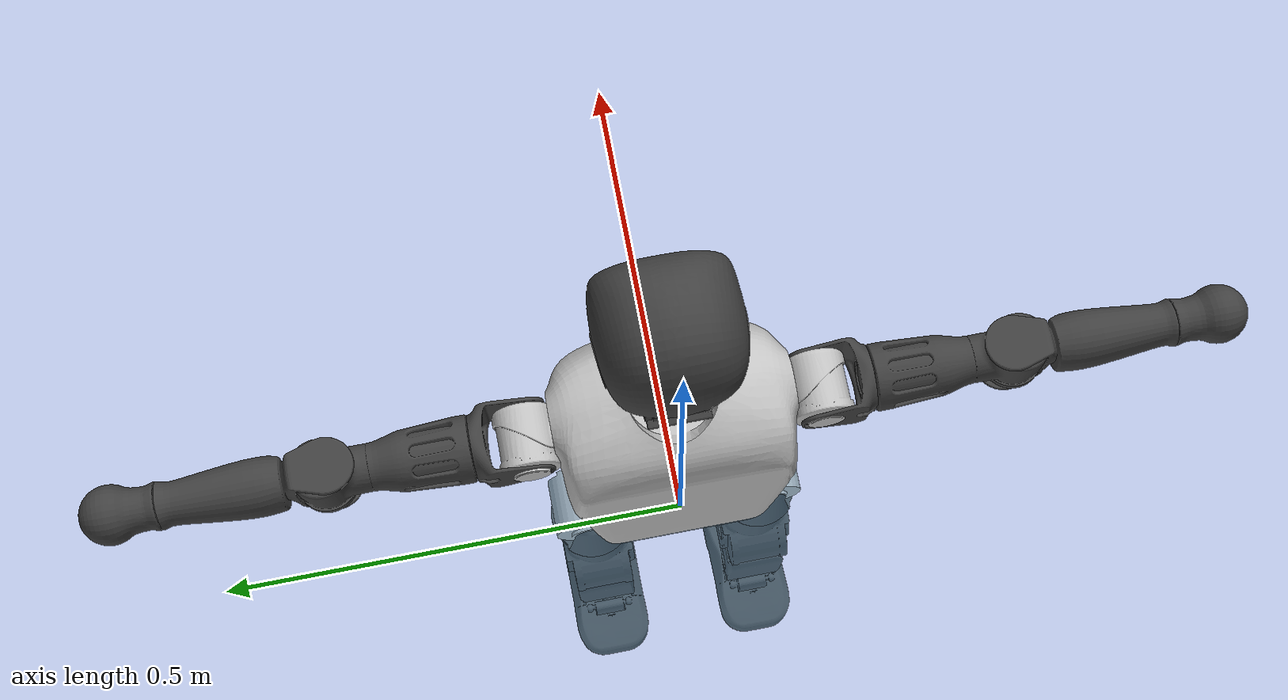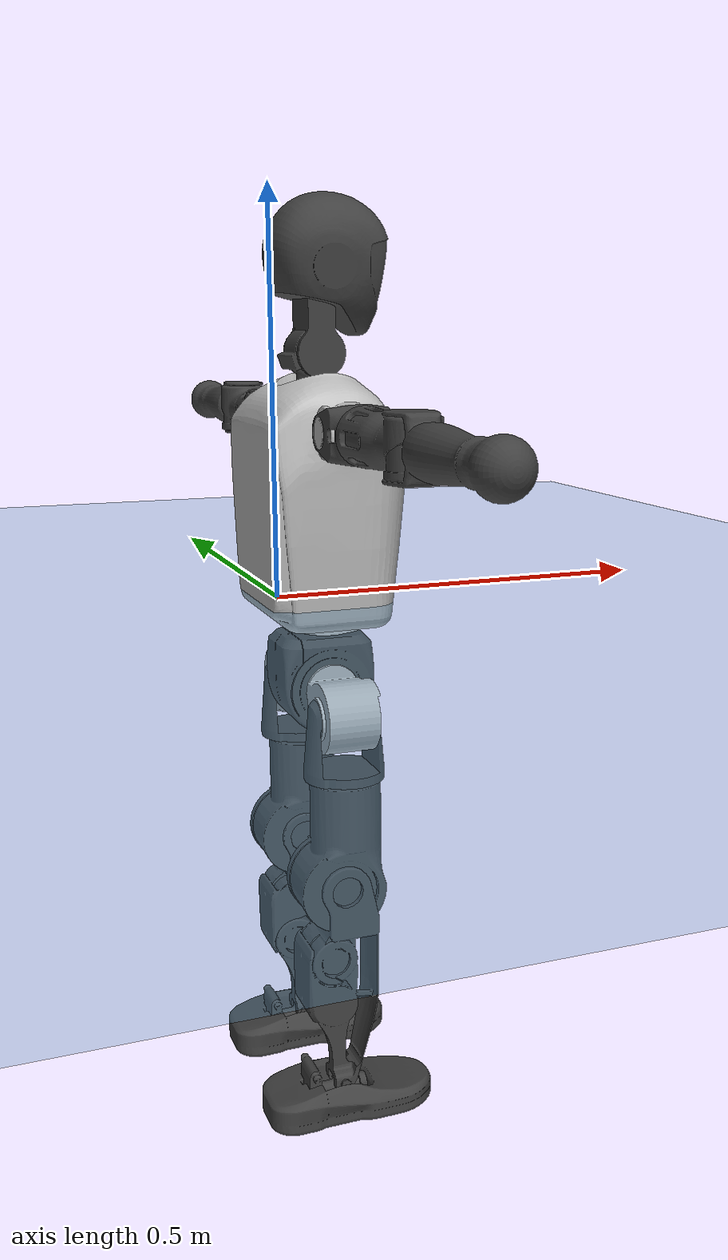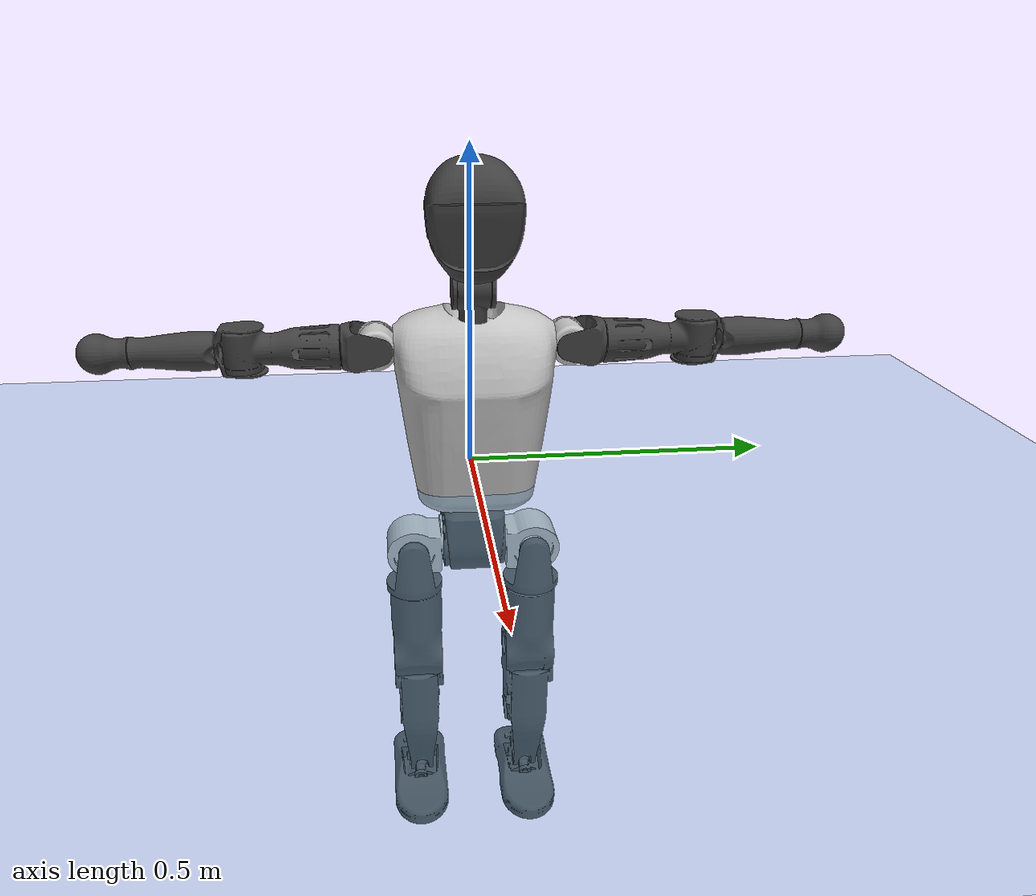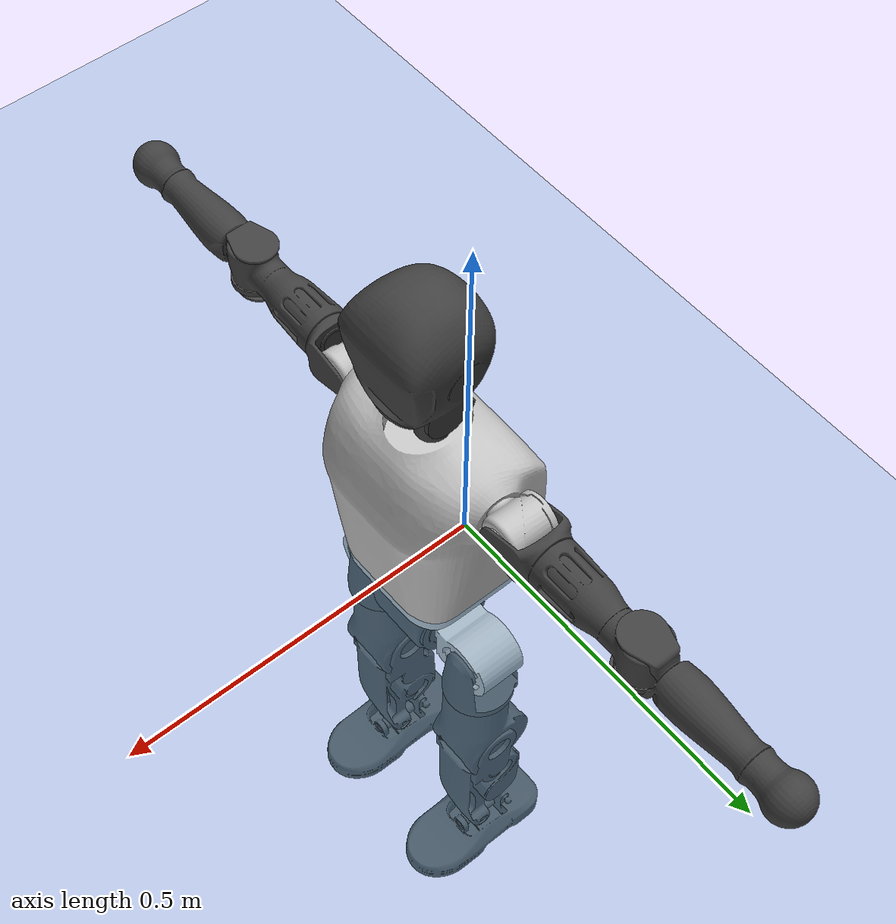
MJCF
<mujoco model="T1">
  <compiler angle="radian" assetdir="assets" balanceinertia="true" inertiafromgeom="false"/>

  <option timestep="0.005" density="1.2" viscosity="2e-05"/>

  <size nkey="1"/>

  <visual>
    <quality shadowsize="8192"/>
    <map shadowclip="0.5"/>
  </visual>

  <default>
    <default class="/">
      <joint armature="0.01" damping="0.01" frictionloss="0.1"/>
      <geom contype="0" conaffinity="0" group="1" solref="-1000 -80"/>
      <site size="0.01 0.005 0.005" group="5"/>
      <general forcelimited="true" biastype="affine" gainprm="25" biasprm="0 -25 -0.6"/>
      <default class="t1">
        <geom rgba="0.25 0.25 0.25 1"/>
        <default class="visual">
          <geom type="mesh" group="2"/>
        </default>
        <default class="collision">
          <geom group="3"/>
        </default>
        <default class="foot">
          <geom size="0.1115 0.05 0.015" type="box" condim="6" group="4" priority="1" solimp="0.015 1 0.015"/>
        </default>
        <default class="reward_collision_sphere">
          <geom group="5" rgba="1 0 0 1"/>
        </default>
      </default>
    </default>
  </default>

  <asset>
    <texture type="skybox" colorspace="auto" name="//unnamed_texture_0" builtin="gradient" rgb1="0.95 0.95 0.95" rgb2="0.95 0.95 0.95" width="100" height="600"/>
    <texture type="2d" colorspace="auto" name="texplane" builtin="checker" rgb1="0.345 0.575 0.748" rgb2="0.345 0.575 0.748" markrgb="1 1 1" width="512" height="512"/>
    <material name="MatPlane" class="/" texture="texplane" texuniform="true" texrepeat="2 2" specular="0.9"/>
    <mesh name="Trunk" class="/" file="Trunk.stl"/>
    <mesh name="H1" class="/" file="H1.stl"/>
    <mesh name="H2" class="/" file="H2.stl"/>
    <mesh name="AL1" class="/" file="AL1.stl"/>
    <mesh name="AL2" class="/" file="AL2.stl"/>
    <mesh name="AL3" class="/" file="AL3.stl"/>
    <mesh name="left_hand_link" class="/" file="left_hand_link.stl"/>
    <mesh name="AR1" class="/" file="AR1.stl"/>
    <mesh name="AR2" class="/" file="AR2.stl"/>
    <mesh name="AR3" class="/" file="AR3.stl"/>
    <mesh name="right_hand_link" class="/" file="right_hand_link.stl"/>
    <mesh name="Waist" class="/" file="Waist.stl"/>
    <mesh name="Hip_Pitch_Left" class="/" file="Hip_Pitch_Left.stl"/>
    <mesh name="Hip_Roll_Left" class="/" file="Hip_Roll_Left.stl"/>
    <mesh name="Hip_Yaw_Left" class="/" file="Hip_Yaw_Left.stl"/>
    <mesh name="Shank_Left" class="/" file="Shank_Left.stl"/>
    <mesh name="Ankle_Cross_Left" class="/" file="Ankle_Cross_Left.stl"/>
    <mesh name="left_foot_link" class="/" file="left_foot_link.stl"/>
    <mesh name="Hip_Pitch_Right" class="/" file="Hip_Pitch_Right.stl"/>
    <mesh name="Hip_Roll_Right" class="/" file="Hip_Roll_Right.stl"/>
    <mesh name="Hip_Yaw_Right" class="/" file="Hip_Yaw_Right.stl"/>
    <mesh name="Shank_Right" class="/" file="Shank_Right.stl"/>
    <mesh name="Ankle_Cross_Right" class="/" file="Ankle_Cross_Right.stl"/>
    <mesh name="right_foot_link" class="/" file="right_foot_link.stl"/>
  </asset>

  <worldbody>
    <geom name="floor" class="/" size="100 100 0.125" type="plane" group="0" material="MatPlane"/>
    <light name="toplight_shadow" class="/" pos="0 0 5" dir="0.0990148 0.0990148 -0.990148" type="directional" ambient="0.04 0.04 0.04" diffuse="0.55 0.55 0.55" specular="0.12 0.12 0.12"/>
    <light name="toplight_fill" class="/" pos="0 0 5" dir="0.0990148 0.0990148 -0.990148" type="directional" castshadow="false" ambient="0.04 0.04 0.04" diffuse="0.3 0.3 0.3" specular="0.08 0.08 0.08"/>
    <body name="trunk" childclass="t1" pos="7.19066e-05 -0.000495055 -0.000222503" quat="1 0.000204648 0.000384317 -0.000179776">
      <inertial pos="0.0463681 -0.0012423 0.10305" quat="0.99996 0.000927928 -0.00881755 -0.000625117" mass="9.43289" diaginertia="0.0382803 0.0592679 0.0525151"/>
      <joint name="//unnamed_joint_0" type="free" armature="0" damping="0" frictionloss="0"/>
      <geom name="//unnamed_geom_1" class="visual" rgba="0.76 0.76 0.76 1" mesh="Trunk"/>
      <geom name="//unnamed_geom_2" class="collision" size="0.0693924 0.0925232 0.138785" pos="0.0503427 0 0.118623" type="box"/>
      <geom name="//unnamed_geom_3" class="reward_collision_sphere" size="0.106402" pos="0.0503427 0 0.0988525"/>
      <geom name="//unnamed_geom_4" class="reward_collision_sphere" size="0.0138785" pos="0.0503427 0.0805908 0"/>
      <geom name="//unnamed_geom_5" class="reward_collision_sphere" size="0.0138785" pos="0.0503427 -0.0805908 0"/>
      <geom name="//unnamed_geom_6" class="reward_collision_sphere" size="0.0138785" pos="0.0503427 0.10145 0.177934"/>
      <geom name="//unnamed_geom_7" class="reward_collision_sphere" size="0.0138785" pos="0.0503427 -0.10145 0.177934"/>
      <site name="imu" pos="-0.00813116 0.0088108 -0.0077124" size="0.00925232"/>
      <camera name="track" pos="0 -1.89625 0" quat="0.707107 0.707107 0 0" mode="trackcom"/>
      <camera name="ego_camera" pos="0.102364 0 0.41518" quat="-0.5 -0.5 0.5 0.5"/>
      <body name="H1" pos="0.051723 -0.000119701 0.240766" quat="1 0.000358045 0.000688873 -6.48445e-05">
        <inertial pos="-0.0010986 -0.00114566 0.0559248" quat="0.76521 -0.0129537 0.0020229 0.643647" mass="0.364733" diaginertia="0.000101242 0.000171925 0.000142945"/>
        <joint name="AAHead_yaw" pos="0 0 0" axis="0.00285347 0.0011474 0.999995" stiffness="0.00159374" range="-1.56476 1.57742" armature="0.0100681" damping="0.00221007" frictionloss="0.0918577"/>
        <geom name="//unnamed_geom_8" class="visual" mesh="H1"/>
        <body name="H2" pos="0.00147032 0.00025909 0.0611146" quat="1 0.000287212 -0.000299361 -0.000227057">
          <inertial pos="0.00620241 0.00136919 0.0973713" quat="0.988593 0.10497 -0.074124 -0.0785508" mass="0.503389" diaginertia="0.000845441 0.0014792 0.00161583"/>
          <joint name="Head_pitch" pos="0 0 0" axis="-0.000164032 -1 -0.000498501" range="-1.22626 0.361615" armature="0.00867266" damping="0.00795269" frictionloss="0.0900553"/>
          <geom name="//unnamed_geom_9" class="visual" mesh="H2"/>
          <geom name="//unnamed_geom_10" class="collision" size="0.0740186" pos="0.00839046 0 0.108738"/>
          <geom name="//unnamed_geom_11" class="reward_collision_sphere" size="0.0832709" pos="0.0167809 0 0.0988525"/>
        </body>
      </body>
      <body name="AL1" pos="0.0482219 0.100576 0.21571" quat="1 0.000130164 0.000627286 -3.50568e-05">
        <inertial pos="-0.00103975 0.0430476 -2.04587e-06" quat="0.505463 0.494497 -0.503741 0.49621" mass="0.421147" diaginertia="0.000564626 0.00100247 0.000279632"/>
        <joint name="Left_Shoulder_Pitch" pos="0 0 0" axis="-0.0042649 0.999991 0.000826547" range="-3.3291 1.21038" armature="0.00959642" damping="0.00810074" frictionloss="0.0945044"/>
        <geom name="//unnamed_geom_12" class="visual" rgba="0.76 0.76 0.76 1" mesh="AL1"/>
        <body name="AL2" pos="0.00154041 0.0441651 0.000102326" quat="1 -1.11623e-05 -2.03008e-05 7.32575e-06">
          <inertial pos="0.0036804 0.0361338 0.000801703" quat="0.487986 0.511719 -0.488001 0.51173" mass="0.128129" diaginertia="0.000165944 0.000259783 0.000164549"/>
          <joint name="Left_Shoulder_Roll" pos="0 0 0" axis="-0.999995 -0.0030588 -0.000412891" range="-1.54171 1.77108" armature="0.00857149" damping="0.0067082" frictionloss="0.0923951"/>
          <geom name="//unnamed_geom_13" class="visual" mesh="AL2"/>
          <body name="AL3" pos="0.00103827 0.0571547 -0.000524973" quat="1 -0.000171616 6.30654e-05 8.95774e-05">
            <inertial pos="-0.000530733 0.0809276 -0.000201456" quat="0.707773 0.706427 -0.000374534 0.0041662" mass="0.811241" diaginertia="0.00540663 0.00986329 0.000578222"/>
            <joint name="Left_Elbow_Pitch" pos="0 0 0" axis="0.00560037 -0.999953 -0.00785369" range="-2.23991 2.27922" armature="0.00830101" damping="0.00203708" frictionloss="0.0924187"/>
            <geom name="//unnamed_geom_14" class="visual" mesh="AL3"/>
            <geom name="//unnamed_geom_15" class="collision" size="0.027757 0.0693924" pos="0 0.0474063 0" quat="0.707105 0.707108 0 0" type="cylinder"/>
            <geom name="//unnamed_geom_16" class="reward_collision_sphere" size="0.0333084"/>
            <body name="left_hand_link" pos="0.000535318 0.140035 0.000683087" quat="1 0.00012433 0.000501782 -5.55307e-05">
              <inertial pos="-0.000235287 0.104272 -0.000432769" quat="0.707815 0.706397 6.20498e-05 -0.000373634" mass="0.256617" diaginertia="0.00341183 0.00629613 0.000199593"/>
              <joint name="Left_Elbow_Yaw" pos="0 0 0" axis="-0.00169554 0.00569807 0.999982" stiffness="0.000826079" range="-2.42465 0.00460486" armature="0.0100231" damping="0.0142967" frictionloss="0.0955123"/>
              <geom name="//unnamed_geom_17" class="visual" mesh="left_hand_link"/>
              <geom name="//unnamed_geom_18" class="collision" size="0.027757 0.0809578" pos="0 0.123256 0" quat="0.707105 0.707108 0 0" type="cylinder"/>
              <geom name="//unnamed_geom_19" class="reward_collision_sphere" size="0.0462616"/>
              <geom name="//unnamed_geom_20" class="reward_collision_sphere" size="0.0323831" pos="0 0.104294 0"/>
              <geom name="//unnamed_geom_21" class="reward_collision_sphere" size="0.0323831" pos="0 0.203847 0"/>
            </body>
          </body>
        </body>
      </body>
      <body name="AR1" pos="0.0469859 -0.100486 0.216068" quat="1 -0.000371977 0.000399489 0.000167451">
        <inertial pos="-0.00252422 -0.043687 -5.64482e-05" quat="0.506965 0.496194 -0.496098 0.500664" mass="0.414475" diaginertia="0.000573893 0.00100009 0.000281483"/>
        <joint name="Right_Shoulder_Pitch" pos="0 0 0" axis="-0.00305039 -0.999995 0.000711654" stiffness="0.00247412" range="-1.22818 3.31035" armature="0.00914391" damping="0.0053402" frictionloss="0.0925907"/>
        <geom name="//unnamed_geom_22" class="visual" rgba="0.76 0.76 0.76 1" mesh="AR1"/>
        <body name="AR2" pos="-0.000198874 -0.0429508 -5.29405e-05" quat="1 -0.00029256 0.000134452 0.00036596">
          <inertial pos="0.00218398 -0.0354599 -0.000328341" quat="0.511664 0.487976 -0.511841 0.487953" mass="0.126118" diaginertia="0.000167426 0.000268392 0.000165147"/>
          <joint name="Right_Shoulder_Roll" pos="0 0 0" axis="-0.999989 -0.00206086 0.00410571" stiffness="0.00205491" range="-1.75539 1.60718" armature="0.00913046" damping="0.00618857" frictionloss="0.0943285"/>
          <geom name="//unnamed_geom_23" class="visual" mesh="AR2"/>
          <body name="AR3" pos="-0.000873419 -0.0576908 -0.00022913" quat="1 -1.99893e-06 -1.96888e-06 -4.07508e-07">
            <inertial pos="-0.000531931 -0.0825464 0.000783844" quat="0.708057 0.706155 -0.00051354 -6.7884e-05" mass="0.806713" diaginertia="0.00530025 0.00980713 0.000590358"/>
            <joint name="Right_Elbow_Pitch" pos="0 0 0" axis="-0.00392833 0.999991 0.00186162" range="-2.2821 2.26521" armature="0.00936508" damping="0.0109503" frictionloss="0.0930617"/>
            <geom name="//unnamed_geom_24" class="visual" mesh="AR3"/>
            <geom name="//unnamed_geom_25" class="collision" size="0.027757 0.0693924" pos="0 -0.0474063 0" quat="0.707105 0.707108 0 0" type="cylinder"/>
            <geom name="//unnamed_geom_26" class="reward_collision_sphere" size="0.0333084"/>
            <body name="right_hand_link" pos="-0.000766853 -0.13927 -0.00042357" quat="1 0.000251021 -2.97769e-06 -0.000282393">
              <inertial pos="-0.00032542 -0.103953 0.000679305" quat="0.704961 0.709245 -0.000110835 -0.00141" mass="0.262988" diaginertia="0.00339164 0.00624585 0.000203663"/>
              <joint name="Right_Elbow_Yaw" pos="0 0 0" axis="0.00264786 0.0023686 0.999994" range="0.00828716 2.43161" armature="0.00940475" damping="0.0113429" frictionloss="0.0916041"/>
              <geom name="//unnamed_geom_27" class="visual" mesh="right_hand_link"/>
              <geom name="//unnamed_geom_28" class="collision" size="0.027757 0.0809578" pos="0 -0.123256 0" quat="0.707105 0.707108 0 0" type="cylinder"/>
              <geom name="//unnamed_geom_29" class="reward_collision_sphere" size="0.0462616"/>
              <geom name="//unnamed_geom_30" class="reward_collision_sphere" size="0.0323831" pos="0 -0.104294 0"/>
              <geom name="//unnamed_geom_31" class="reward_collision_sphere" size="0.0323831" pos="0 -0.203847 0"/>
            </body>
          </body>
        </body>
      </body>
      <body name="Waist" pos="0.0536238 -0.00204786 -0.114314" quat="1 0.000227705 -1.46689e-05 0.000242382">
        <inertial pos="-0.000412642 -0.000781687 0.00717748" quat="0.983375 0.00111417 -0.181579 0.000750596" mass="2.0831" diaginertia="0.00220256 0.00412425 0.0044729"/>
        <joint name="Waist" pos="0 0 0" axis="0.00561036 0.0061333 0.999965" range="-1.58817 1.58552" armature="0.00968051" damping="0.0215848" frictionloss="0.0936438"/>
        <geom name="//unnamed_geom_32" class="visual" mesh="Waist"/>
        <body name="Hip_Pitch_Left" pos="-0.000943273 0.100719 -0.000216007" quat="0.999999 -0.000433902 -0.00117139 0.000443846">
          <inertial pos="0.000651996 -0.00559893 -0.0181311" quat="0.975139 0.22113 0.014295 0.00110299" mass="0.781183" diaginertia="0.000735473 0.00109793 0.00118085"/>
          <joint name="Left_Hip_Pitch" pos="0 0 0" axis="-0.000349657 0.999979 -0.00640616" range="-1.78781 1.56795" armature="0.00906367" damping="0.00738413" frictionloss="0.100905"/>
          <geom name="//unnamed_geom_33" class="visual" rgba="0.76 0.76 0.76 1" mesh="Hip_Pitch_Left"/>
          <body name="Hip_Roll_Left" pos="0.00224885 0.00106649 -0.0221806" quat="1 -0.000157099 -0.000823652 0.000137937">
            <inertial pos="0.000946474 0.00107639 -0.0546575" quat="0.706179 -0.00415151 -0.00470649 0.708006" mass="0.304254" diaginertia="0.000718135 0.00116004 0.000484397"/>
            <joint name="Left_Hip_Roll" pos="0 0 0" axis="-1 -0.000920664 -4.64178e-05" stiffness="0.000960738" range="-1.56999 0.196449" armature="0.00922834" damping="0.0136702" frictionloss="0.0929942"/>
            <geom name="//unnamed_geom_34" class="visual" mesh="Hip_Roll_Left"/>
            <geom name="//unnamed_geom_35" class="reward_collision_sphere" size="0.0508878"/>
            <body name="Hip_Yaw_Left" pos="0.00195534 -0.00130729 -0.0820246" quat="1 8.58278e-05 0.000117148 4.53688e-05">
              <inertial pos="-0.00589813 0.0015761 -0.0868307" quat="0.69735 -0.0317909 -0.029587 0.715414" mass="1.69358" diaginertia="0.0105806 0.0191665 0.00243312"/>
              <joint name="Left_Hip_Yaw" pos="0 0 0" axis="0.00208765 0.00436677 -0.999988" range="-1.01112 1.01135" armature="0.00925289" damping="0.0139175" frictionloss="0.091256"/>
              <geom name="//unnamed_geom_36" class="visual" mesh="Hip_Yaw_Left"/>
              <geom name="//unnamed_geom_37" class="collision" size="0.0462616 0.0740186" type="cylinder"/>
              <body name="Shank_Left" pos="-0.00944119 0.000190019 -0.132273" quat="1 0.000147402 5.3868e-05 -2.81806e-05">
                <inertial pos="-0.0051138 0.00119638 -0.123984" quat="0.99773 0.0020342 -0.0286171 0.0609256" mass="1.37075" diaginertia="0.0144424 0.0262582 0.00175825"/>
                <joint name="Left_Knee_Pitch" pos="0 0 0" axis="0.000811623 0.999999 0.000762122" range="0.00563456 2.32106" armature="0.00938466" damping="0.0109483" frictionloss="0.0922888"/>
                <geom name="//unnamed_geom_38" class="visual" mesh="Shank_Left"/>
                <geom name="//unnamed_geom_39" class="collision" size="0.0462616 0.0693924" pos="0 0 -0.118623" type="cylinder"/>
                <geom name="//unnamed_geom_40" class="reward_collision_sphere" size="0.0601401"/>
                <body name="Ankle_Cross_Left" pos="-0.000978802 -0.000458049 -0.277226" quat="1 -0.000339912 0.00024939 -9.42316e-05">
                  <inertial pos="-0.00348815 0.000220437 -0.0087013" quat="0.444001 0.551286 0.550987 0.441997" mass="0.0579208" diaginertia="1.20684e-05 1.958e-05 1.06472e-05"/>
                  <joint name="Left_Ankle_Pitch" pos="0 0 0" axis="-0.00120896 0.999997 0.00207367" range="-0.905874 0.382447" armature="0.00898436" damping="0" frictionloss="0.0899829"/>
                  <geom name="//unnamed_geom_41" class="visual" mesh="Ankle_Cross_Left"/>
                  <body name="left_foot_link" pos="-0.000167143 0.00084524 -0.0133658" quat="1 0.000663263 0.000190369 0.000640309">
                    <inertial pos="0.000518133 -0.000320369 -0.00851525" quat="0.0014287 0.621944 -0.00115595 0.78306" mass="0.558308" diaginertia="0.00116708 0.00187321 0.00217604"/>
                    <joint name="Left_Ankle_Roll" pos="0 0 0" axis="-1 -1.83855e-05 -0.000110379" range="-0.44654 0.477397" armature="0.00929998" damping="0.00967846" frictionloss="0.102735"/>
                    <geom name="//unnamed_geom_42" class="visual" mesh="left_foot_link"/>
                    <geom name="left_foot" class="foot" size="0.104912 0.0442485 0.0152342" pos="0.00839046 0 -0.0148279"/>
                    <geom name="//unnamed_geom_44" class="reward_collision_sphere" size="0.0481121" pos="0.00839046 0 -0.0148279"/>
                    <geom name="//unnamed_geom_45" class="reward_collision_sphere" size="0.027757" pos="0.0797093 -0.0218069 -0.0148279"/>
                    <geom name="//unnamed_geom_46" class="reward_collision_sphere" size="0.027757" pos="-0.0587332 -0.0218069 -0.0148279"/>
                    <site name="left_foot" class="foot" pos="0.00839046 0 -0.0148279" size="0.00925232"/>
                  </body>
                </body>
              </body>
            </body>
          </body>
        </body>
        <body name="Hip_Pitch_Right" pos="-0.000117444 -0.100711 7.26196e-05" quat="1 9.52329e-06 3.88127e-05 3.3524e-05">
          <inertial pos="0.00143682 0.00727271 -0.0167685" quat="0.971865 -0.234537 0.0199514 -0.00857898" mass="0.798429" diaginertia="0.000732163 0.00108168 0.00116286"/>
          <joint name="Right_Hip_Pitch" pos="0 0 0" axis="9.51974e-05 -1 -0.000442779" stiffness="0.00177765" range="-1.56818 1.81266" armature="0.00893058" damping="0.00692817" frictionloss="0.0921199"/>
          <geom name="//unnamed_geom_47" class="visual" rgba="0.76 0.76 0.76 1" mesh="Hip_Pitch_Right"/>
          <body name="Hip_Roll_Right" pos="7.67618e-05 -0.000176623 -0.0211275" quat="1 6.30002e-05 -0.000132564 -2.62215e-05">
            <inertial pos="0.000831051 -0.000933933 -0.0529357" quat="0.706764 -0.00553292 -0.00707489 0.707392" mass="0.301956" diaginertia="0.000721612 0.00116032 0.000477691"/>
            <joint name="Right_Hip_Roll" pos="0 0 0" axis="-0.999996 0.000391319 -0.002642" range="-0.205775 1.56345" armature="0.00959158" damping="0.00625897" frictionloss="0.0928068"/>
            <geom name="//unnamed_geom_48" class="visual" mesh="Hip_Roll_Right"/>
            <geom name="//unnamed_geom_49" class="reward_collision_sphere" size="0.0508878"/>
            <body name="Hip_Yaw_Right" pos="-0.000704166 0.00184477 -0.0814215" quat="1 -6.89455e-06 -6.30813e-05 1.1176e-05">
              <inertial pos="-0.00584612 8.28548e-05 -0.0902577" quat="0.712569 -0.0305761 -0.0349728 0.700063" mass="1.73919" diaginertia="0.0106981 0.019555 0.00246705"/>
              <joint name="Right_Hip_Yaw" pos="0 0 0" axis="5.85337e-05 -0.00250618 -0.999997" range="-0.983226 1.01541" armature="0.00943615" damping="0.0131736" frictionloss="0.0930965"/>
              <geom name="//unnamed_geom_50" class="visual" mesh="Hip_Yaw_Right"/>
              <geom name="//unnamed_geom_51" class="collision" size="0.0462616 0.0740186" type="cylinder"/>
              <body name="Shank_Right" pos="-0.0122168 -0.000112889 -0.132657" quat="1 6.96564e-05 -8.61262e-05 0.000173375">
                <inertial pos="-0.00301721 -0.000721071 -0.120247" quat="0.999371 0.000855444 -0.0232951 -0.0267133" mass="1.40434" diaginertia="0.0144958 0.0268676 0.00184112"/>
                <joint name="Right_Knee_Pitch" pos="0 0 0" axis="0.00691327 -0.999971 0.00327209" stiffness="0.000483893" range="-2.33625 0.00363738" armature="0.00906763" damping="0.00263804" frictionloss="0.0946587"/>
                <geom name="//unnamed_geom_52" class="visual" mesh="Shank_Right"/>
                <geom name="//unnamed_geom_53" class="collision" size="0.0462616 0.0693924" pos="0 0 -0.118623" type="cylinder"/>
                <geom name="//unnamed_geom_54" class="reward_collision_sphere" size="0.0601401"/>
                <body name="Ankle_Cross_Right" pos="0.00151306 -0.00264362 -0.277455" quat="1 -0.000339759 0.000704045 -0.000410715">
                  <inertial pos="-0.00295064 0.000442879 -0.00834683" quat="0.442864 0.549938 0.551635 0.444002" mass="0.0578506" diaginertia="1.19025e-05 1.96647e-05 1.08615e-05"/>
                  <joint name="Right_Ankle_Pitch" pos="0 0 0" axis="-0.00275233 -0.999988 0.0040491" range="-0.332135 0.905672" armature="0.00910242" damping="0.0100712" frictionloss="0.0926275"/>
                  <geom name="//unnamed_geom_55" class="visual" mesh="Ankle_Cross_Right"/>
                  <body name="right_foot_link" pos="3.13736e-06 -0.000918559 -0.0115202" quat="1 -0.000187935 -0.000145255 -0.000169144">
                    <inertial pos="-0.000413437 -0.000409545 -0.00888758" quat="-0.00176278 0.622642 -0.00240036 0.782501" mass="0.542966" diaginertia="0.00109913 0.00183204 0.00208949"/>
                    <joint name="Right_Ankle_Roll" pos="0 0 0" axis="-0.999996 -0.000855517 -0.00266335" range="-0.452214 0.457287" armature="0.00889355" damping="0.00895976" frictionloss="0.0914725"/>
                    <geom name="//unnamed_geom_56" class="visual" mesh="right_foot_link"/>
                    <geom name="right_foot" class="foot" size="0.100928 0.0443304 0.0138805" pos="0.00839046 0 -0.0148279"/>
                    <geom name="//unnamed_geom_58" class="reward_collision_sphere" size="0.0370093"/>
                    <geom name="//unnamed_geom_59" class="reward_collision_sphere" size="0.027757" pos="0.00839046 0 -0.0148279"/>
                    <geom name="//unnamed_geom_60" class="reward_collision_sphere" size="0.027757" pos="0.0797093 0.0218069 -0.0148279"/>
                    <geom name="//unnamed_geom_61" class="reward_collision_sphere" size="0.027757" pos="-0.0587332 0.0218069 -0.0148279"/>
                    <site name="right_foot" class="foot" pos="0.00839046 0 -0.0148279" size="0.00925232"/>
                  </body>
                </body>
              </body>
            </body>
          </body>
        </body>
      </body>
    </body>
  </worldbody>

  <contact>
    <pair class="/" geom1="floor" geom2="left_foot" name="//unnamed_contact_0"/>
    <pair class="/" geom1="floor" geom2="right_foot" name="//unnamed_contact_1"/>
  </contact>

  <actuator>
    <general name="AAHead_yaw" class="/" joint="AAHead_yaw" forcerange="-6.66099 6.66099" gainprm="22.0632" biasprm="0 -22.0632 -0.558904"/>
    <general name="Head_pitch" class="/" joint="Head_pitch" forcerange="-6.38828 6.38828" gainprm="22.0632" biasprm="0 -22.0632 -0.558904"/>
    <general name="Left_Shoulder_Pitch" class="/" joint="Left_Shoulder_Pitch" forcerange="-16.8872 16.8872" gainprm="22.0632" biasprm="0 -22.0632 -0.558904"/>
    <general name="Left_Shoulder_Roll" class="/" joint="Left_Shoulder_Roll" forcerange="-17.0424 17.0424" gainprm="22.0632" biasprm="0 -22.0632 -0.558904"/>
    <general name="Left_Elbow_Pitch" class="/" joint="Left_Elbow_Pitch" forcerange="-15.5729 15.5729" gainprm="22.0632" biasprm="0 -22.0632 -0.558904"/>
    <general name="Left_Elbow_Yaw" class="/" joint="Left_Elbow_Yaw" forcerange="-17.5542 17.5542" gainprm="22.0632" biasprm="0 -22.0632 -0.558904"/>
    <general name="Right_Shoulder_Pitch" class="/" joint="Right_Shoulder_Pitch" forcerange="-17.6873 17.6873" gainprm="22.0632" biasprm="0 -22.0632 -0.558904"/>
    <general name="Right_Shoulder_Roll" class="/" joint="Right_Shoulder_Roll" forcerange="-17.292 17.292" gainprm="22.0632" biasprm="0 -22.0632 -0.558904"/>
    <general name="Right_Elbow_Pitch" class="/" joint="Right_Elbow_Pitch" forcerange="-16.7197 16.7197" gainprm="22.0632" biasprm="0 -22.0632 -0.558904"/>
    <general name="Right_Elbow_Yaw" class="/" joint="Right_Elbow_Yaw" forcerange="-16.7338 16.7338" gainprm="22.0632" biasprm="0 -22.0632 -0.558904"/>
    <general name="Waist" class="/" joint="Waist" forcerange="-27.8876 27.8876" gainprm="22.0632" biasprm="0 -22.0632 -0.558904"/>
    <general name="Left_Hip_Pitch" class="/" joint="Left_Hip_Pitch" forcerange="-43.1096 43.1096" gainprm="22.0632" biasprm="0 -22.0632 -0.558904"/>
    <general name="Left_Hip_Roll" class="/" joint="Left_Hip_Roll" forcerange="-29.2454 29.2454" gainprm="22.0632" biasprm="0 -22.0632 -0.558904"/>
    <general name="Left_Hip_Yaw" class="/" joint="Left_Hip_Yaw" forcerange="-25.8864 25.8864" gainprm="22.0632" biasprm="0 -22.0632 -0.558904"/>
    <general name="Left_Knee_Pitch" class="/" joint="Left_Knee_Pitch" forcerange="-51.3367 51.3367" gainprm="22.0632" biasprm="0 -22.0632 -0.558904"/>
    <general name="Left_Ankle_Pitch" class="/" joint="Left_Ankle_Pitch" forcerange="-18.3803 18.3803" gainprm="22.0632" biasprm="0 -22.0632 -0.558904"/>
    <general name="Left_Ankle_Roll" class="/" joint="Left_Ankle_Roll" forcerange="-13.8959 13.8959" gainprm="22.0632" biasprm="0 -22.0632 -0.558904"/>
    <general name="Right_Hip_Pitch" class="/" joint="Right_Hip_Pitch" forcerange="-40.4392 40.4392" gainprm="22.0632" biasprm="0 -22.0632 -0.558904"/>
    <general name="Right_Hip_Roll" class="/" joint="Right_Hip_Roll" forcerange="-27.7717 27.7717" gainprm="22.0632" biasprm="0 -22.0632 -0.558904"/>
    <general name="Right_Hip_Yaw" class="/" joint="Right_Hip_Yaw" forcerange="-26.9505 26.9505" gainprm="22.0632" biasprm="0 -22.0632 -0.558904"/>
    <general name="Right_Knee_Pitch" class="/" joint="Right_Knee_Pitch" forcerange="-55.4731 55.4731" gainprm="22.0632" biasprm="0 -22.0632 -0.558904"/>
    <general name="Right_Ankle_Pitch" class="/" joint="Right_Ankle_Pitch" forcerange="-17.8418 17.8418" gainprm="22.0632" biasprm="0 -22.0632 -0.558904"/>
    <general name="Right_Ankle_Roll" class="/" joint="Right_Ankle_Roll" forcerange="-13.9181 13.9181" gainprm="22.0632" biasprm="0 -22.0632 -0.558904"/>
  </actuator>

  <sensor>
    <gyro site="imu" name="imu_angular_velocity"/>
    <velocimeter site="imu" name="imu_linear_velocity"/>
    <framelinvel objtype="site" objname="left_foot" name="left_foot_global_linear_velocity"/>
    <framelinvel objtype="site" objname="right_foot" name="right_foot_global_linear_velocity"/>
  </sensor>

  <keyframe>
    <key name="home" qpos="0 0 0.6385 1 0 0 0 0 0 0 1.4 0 -0.4 0 -1.4 0 0.4 0 -0.4 0 0 0.8 -0.4 0 0.4 0 0 -0.8 0.4 0"/>
  </keyframe>
</mujoco>
